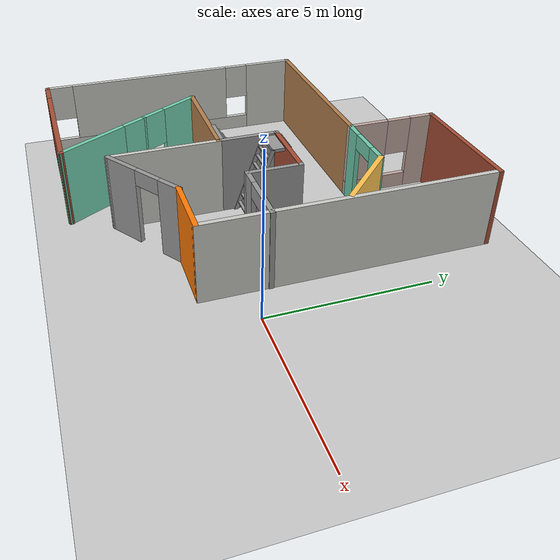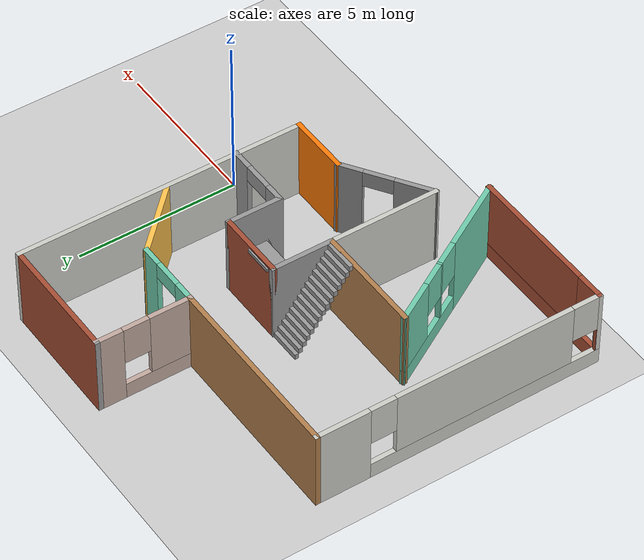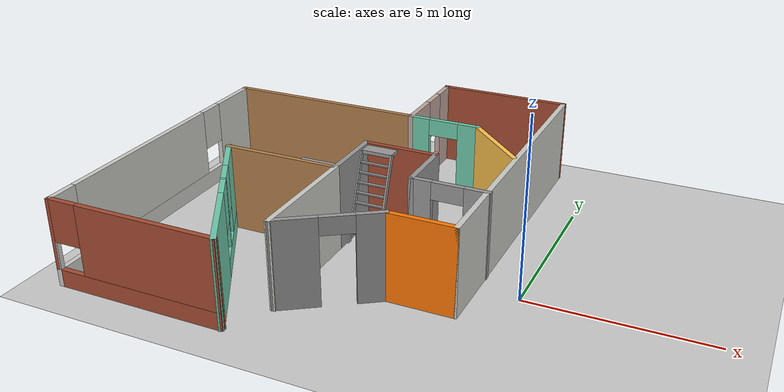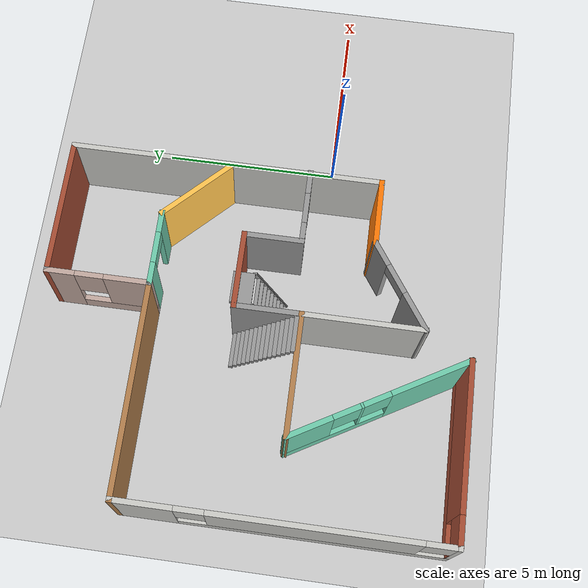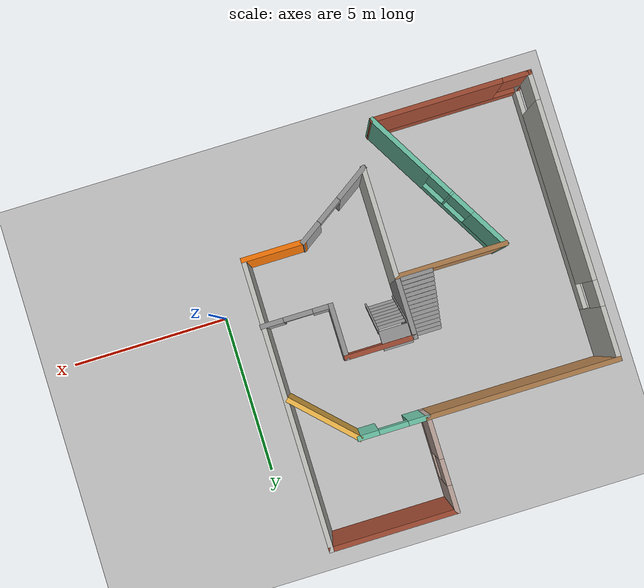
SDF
<sdf version="1.6">
 <world name="default">
  <light name="sun" type="directional">
   <pose>0 0 10 0 -0 0</pose>
   <diffuse>0.8 0.8 0.8 1</diffuse>
   <specular>0.2 0.2 0.2 1</specular>
   <attenuation>
    <range>1000</range>
    <constant>0.9</constant>
    <linear>0.01</linear>
    <quadratic>0.001</quadratic>
   </attenuation>
   <direction>-0.5 0.1 -0.9</direction>
  </light>
  <model name="ground_plane">
   <static>1</static>
   <link name="link">
    <collision name="collision">
     <geometry><plane><normal>0 0 1</normal><size>100 100</size></plane></geometry>
     <surface>
      <contact><collide_bitmask>65535</collide_bitmask></contact>
      <friction><ode><mu>100</mu><mu2>50</mu2></ode></friction>
     </surface>
    </collision>
    <visual name="visual">
     <cast_shadows>0</cast_shadows>
     <geometry><plane><normal>0 0 1</normal><size>100 100</size></plane></geometry>
     <material>
      <script><uri>file://media/materials/scripts/gazebo.material</uri><name>Gazebo/Grey</name></script>
     </material>
    </visual>
   </link>
  </model>
  <gravity>0 0 -9.8</gravity>
  <magnetic_field>6e-06 2.3e-05 -4.2e-05</magnetic_field>
  <atmosphere type="adiabatic"/>
  <physics name="default_physics" default="0" type="ode">
   <max_step_size>0.001</max_step_size>
   <real_time_factor>1</real_time_factor>
   <real_time_update_rate>1000</real_time_update_rate>
  </physics>
  <scene><ambient>0.4 0.4 0.4 1</ambient><background>0.7 0.7 0.7 1</background><shadows>1</shadows></scene>
  <spherical_coordinates>
   <surface_model>EARTH_WGS84</surface_model>
   <latitude_deg>0</latitude_deg>
   <longitude_deg>0</longitude_deg>
   <elevation>0</elevation>
   <heading_deg>0</heading_deg>
  </spherical_coordinates>
  <model name="hus">
   <pose>-6.0275 1.59627 0 0 -0 0</pose>
   <link name="Stairs_1">
    <visual name="Stairs_1_Visual_0">
     <pose>0.082546 0.630764 0.083333 0 -0 0</pose>
     <geometry><box><size>1 0.122816 0.166667</size></box></geometry>
     <material>
      <script><uri>file://media/materials/scripts/gazebo.material</uri><name>Gazebo/Grey</name></script>
      <ambient>1 1 1 1</ambient>
     </material>
     <meta><layer>0</layer></meta>
    </visual>
    <collision name="Stairs_1_Collision_0">
     <geometry><box><size>1 0.122816 0.166667</size></box></geometry>
     <pose>0.082546 0.630764 0.083333 0 -0 0</pose>
    </collision>
    <visual name="Stairs_1_Visual_1">
     <pose>0.082546 0.507948 0.25 0 -0 0</pose>
     <geometry><box><size>1 0.122816 0.166667</size></box></geometry>
     <material>
      <script><uri>file://media/materials/scripts/gazebo.material</uri><name>Gazebo/Grey</name></script>
      <ambient>1 1 1 1</ambient>
     </material>
     <meta><layer>0</layer></meta>
    </visual>
    <collision name="Stairs_1_Collision_1">
     <geometry><box><size>1 0.122816 0.166667</size></box></geometry>
     <pose>0.082546 0.507948 0.25 0 -0 0</pose>
    </collision>
    <visual name="Stairs_1_Visual_2">
     <pose>0.082546 0.385132 0.416667 0 -0 0</pose>
     <geometry><box><size>1 0.122816 0.166667</size></box></geometry>
     <material>
      <script><uri>file://media/materials/scripts/gazebo.material</uri><name>Gazebo/Grey</name></script>
      <ambient>1 1 1 1</ambient>
     </material>
     <meta><layer>0</layer></meta>
    </visual>
    <collision name="Stairs_1_Collision_2">
     <geometry><box><size>1 0.122816 0.166667</size></box></geometry>
     <pose>0.082546 0.385132 0.416667 0 -0 0</pose>
    </collision>
    <visual name="Stairs_1_Visual_3">
     <pose>0.082546 0.262315 0.583333 0 -0 0</pose>
     <geometry><box><size>1 0.122816 0.166667</size></box></geometry>
     <material>
      <script><uri>file://media/materials/scripts/gazebo.material</uri><name>Gazebo/Grey</name></script>
      <ambient>1 1 1 1</ambient>
     </material>
     <meta><layer>0</layer></meta>
    </visual>
    <collision name="Stairs_1_Collision_3">
     <geometry><box><size>1 0.122816 0.166667</size></box></geometry>
     <pose>0.082546 0.262315 0.583333 0 -0 0</pose>
    </collision>
    <visual name="Stairs_1_Visual_4">
     <pose>0.082546 0.139499 0.75 0 -0 0</pose>
     <geometry><box><size>1 0.122816 0.166667</size></box></geometry>
     <material>
      <script><uri>file://media/materials/scripts/gazebo.material</uri><name>Gazebo/Grey</name></script>
      <ambient>1 1 1 1</ambient>
     </material>
     <meta><layer>0</layer></meta>
    </visual>
    <collision name="Stairs_1_Collision_4">
     <geometry><box><size>1 0.122816 0.166667</size></box></geometry>
     <pose>0.082546 0.139499 0.75 0 -0 0</pose>
    </collision>
    <visual name="Stairs_1_Visual_5">
     <pose>0.082546 0.016682 0.916667 0 -0 0</pose>
     <geometry><box><size>1 0.122816 0.166667</size></box></geometry>
     <material>
      <script><uri>file://media/materials/scripts/gazebo.material</uri><name>Gazebo/Grey</name></script>
      <ambient>1 1 1 1</ambient>
     </material>
     <meta><layer>0</layer></meta>
    </visual>
    <collision name="Stairs_1_Collision_5">
     <geometry><box><size>1 0.122816 0.166667</size></box></geometry>
     <pose>0.082546 0.016682 0.916667 0 -0 0</pose>
    </collision>
    <visual name="Stairs_1_Visual_6">
     <pose>0.082546 -0.106134 1.08333 0 -0 0</pose>
     <geometry><box><size>1 0.122816 0.166667</size></box></geometry>
     <material>
      <script><uri>file://media/materials/scripts/gazebo.material</uri><name>Gazebo/Grey</name></script>
      <ambient>1 1 1 1</ambient>
     </material>
     <meta><layer>0</layer></meta>
    </visual>
    <collision name="Stairs_1_Collision_6">
     <geometry><box><size>1 0.122816 0.166667</size></box></geometry>
     <pose>0.082546 -0.106134 1.08333 0 -0 0</pose>
    </collision>
    <visual name="Stairs_1_Visual_7">
     <pose>0.082546 -0.228951 1.25 0 -0 0</pose>
     <geometry><box><size>1 0.122816 0.166667</size></box></geometry>
     <material>
      <script><uri>file://media/materials/scripts/gazebo.material</uri><name>Gazebo/Grey</name></script>
      <ambient>1 1 1 1</ambient>
     </material>
     <meta><layer>0</layer></meta>
    </visual>
    <collision name="Stairs_1_Collision_7">
     <geometry><box><size>1 0.122816 0.166667</size></box></geometry>
     <pose>0.082546 -0.228951 1.25 0 -0 0</pose>
    </collision>
    <visual name="Stairs_1_Visual_8">
     <pose>0.082546 -0.351767 1.41667 0 -0 0</pose>
     <geometry><box><size>1 0.122816 0.166667</size></box></geometry>
     <material>
      <script><uri>file://media/materials/scripts/gazebo.material</uri><name>Gazebo/Grey</name></script>
      <ambient>1 1 1 1</ambient>
     </material>
     <meta><layer>0</layer></meta>
    </visual>
    <collision name="Stairs_1_Collision_8">
     <geometry><box><size>1 0.122816 0.166667</size></box></geometry>
     <pose>0.082546 -0.351767 1.41667 0 -0 0</pose>
    </collision>
    <visual name="Stairs_1_Visual_9">
     <pose>0.082546 -0.474583 1.58333 0 -0 0</pose>
     <geometry><box><size>1 0.122816 0.166667</size></box></geometry>
     <material>
      <script><uri>file://media/materials/scripts/gazebo.material</uri><name>Gazebo/Grey</name></script>
      <ambient>1 1 1 1</ambient>
     </material>
     <meta><layer>0</layer></meta>
    </visual>
    <collision name="Stairs_1_Collision_9">
     <geometry><box><size>1 0.122816 0.166667</size></box></geometry>
     <pose>0.082546 -0.474583 1.58333 0 -0 0</pose>
    </collision>
    <visual name="Stairs_1_Visual_10">
     <pose>0.082546 -0.5974 1.75 0 -0 0</pose>
     <geometry><box><size>1 0.122816 0.166667</size></box></geometry>
     <material>
      <script><uri>file://media/materials/scripts/gazebo.material</uri><name>Gazebo/Grey</name></script>
      <ambient>1 1 1 1</ambient>
     </material>
     <meta><layer>0</layer></meta>
    </visual>
    <collision name="Stairs_1_Collision_10">
     <geometry><box><size>1 0.122816 0.166667</size></box></geometry>
     <pose>0.082546 -0.5974 1.75 0 -0 0</pose>
    </collision>
    <visual name="Stairs_1_Visual_11">
     <pose>0.082546 -0.720216 1.91667 0 -0 0</pose>
     <geometry><box><size>1 0.122816 0.166667</size></box></geometry>
     <material>
      <script><uri>file://media/materials/scripts/gazebo.material</uri><name>Gazebo/Grey</name></script>
      <ambient>1 1 1 1</ambient>
     </material>
     <meta><layer>0</layer></meta>
    </visual>
    <collision name="Stairs_1_Collision_11">
     <geometry><box><size>1 0.122816 0.166667</size></box></geometry>
     <pose>0.082546 -0.720216 1.91667 0 -0 0</pose>
    </collision>
    <visual name="Stairs_1_Visual_12">
     <pose>0.082546 -0.843033 2.08333 0 -0 0</pose>
     <geometry><box><size>1 0.122816 0.166667</size></box></geometry>
     <material>
      <script><uri>file://media/materials/scripts/gazebo.material</uri><name>Gazebo/Grey</name></script>
      <ambient>1 1 1 1</ambient>
     </material>
     <meta><layer>0</layer></meta>
    </visual>
    <collision name="Stairs_1_Collision_12">
     <geometry><box><size>1 0.122816 0.166667</size></box></geometry>
     <pose>0.082546 -0.843033 2.08333 0 -0 0</pose>
    </collision>
    <visual name="Stairs_1_Visual_13">
     <pose>0.082546 -0.965849 2.25 0 -0 0</pose>
     <geometry><box><size>1 0.122816 0.166667</size></box></geometry>
     <material>
      <script><uri>file://media/materials/scripts/gazebo.material</uri><name>Gazebo/Grey</name></script>
      <ambient>1 1 1 1</ambient>
     </material>
     <meta><layer>0</layer></meta>
    </visual>
    <collision name="Stairs_1_Collision_13">
     <geometry><box><size>1 0.122816 0.166667</size></box></geometry>
     <pose>0.082546 -0.965849 2.25 0 -0 0</pose>
    </collision>
    <visual name="Stairs_1_Visual_14">
     <pose>0.082546 -1.08866 2.41667 0 -0 0</pose>
     <geometry><box><size>1 0.122816 0.166667</size></box></geometry>
     <material>
      <script><uri>file://media/materials/scripts/gazebo.material</uri><name>Gazebo/Grey</name></script>
      <ambient>1 1 1 1</ambient>
     </material>
     <meta><layer>0</layer></meta>
    </visual>
    <collision name="Stairs_1_Collision_14">
     <geometry><box><size>1 0.122816 0.166667</size></box></geometry>
     <pose>0.082546 -1.08866 2.41667 0 -0 0</pose>
    </collision>
   </link>
   <link name="Wall_0">
    <collision name="Wall_0_Collision">
     <geometry><box><size>2 0.15 2.5</size></box></geometry>
     <pose>0 0 1.25 0 -0 0</pose>
    </collision>
    <visual name="Wall_0_Visual">
     <pose>0 0 1.25 0 -0 0</pose>
     <geometry><box><size>2 0.15 2.5</size></box></geometry>
     <material>
      <script><uri>file://media/materials/scripts/gazebo.material</uri><name>Gazebo/Grey</name></script>
      <ambient>0.996078 0.47451 0.0196078 1</ambient>
     </material>
     <meta><layer>0</layer></meta>
    </visual>
    <pose>3.9125 -2.98627 0 0 -0 0</pose>
   </link>
   <link name="Wall_1">
    <collision name="Wall_1_Collision">
     <geometry><box><size>9 0.15 2.5</size></box></geometry>
     <pose>0 0 1.25 0 -0 0</pose>
    </collision>
    <visual name="Wall_1_Visual">
     <pose>0 0 1.25 0 -0 0</pose>
     <geometry><box><size>9 0.15 2.5</size></box></geometry>
     <material>
      <script><uri>file://media/materials/scripts/gazebo.material</uri><name>Gazebo/CeilingTiled</name></script>
      <ambient>1 1 1 1</ambient>
     </material>
     <meta><layer>0</layer></meta>
    </visual>
    <pose>4.8375 1.43873 0 0 -0 1.5708</pose>
   </link>
   <link name="Wall_10">
    <pose>-1.35 -3.51966 0 0 -0 2.0944</pose>
    <visual name="Wall_10_Visual_0">
     <pose>-1.53491 0 1.25 0 -0 0</pose>
     <geometry><box><size>2.43019 0.15 2.5</size></box></geometry>
     <material>
      <script><uri>file://media/materials/scripts/gazebo.material</uri><name>Gazebo/Grey</name></script>
      <ambient>0.435294 0.796078 0.67451 1</ambient>
     </material>
     <meta><layer>0</layer></meta>
    </visual>
    <collision name="Wall_10_Collision_0">
     <geometry><box><size>2.43019 0.15 2.5</size></box></geometry>
     <pose>-1.53491 0 1.25 0 -0 0</pose>
    </collision>
    <visual name="Wall_10_Visual_1">
     <pose>1.21509 0 0.25 0 -0 0</pose>
     <geometry><box><size>3.06981 0.15 0.5</size></box></geometry>
     <material>
      <script><uri>file://media/materials/scripts/gazebo.material</uri><name>Gazebo/Grey</name></script>
      <ambient>0.435294 0.796078 0.67451 1</ambient>
     </material>
     <meta><layer>0</layer></meta>
    </visual>
    <collision name="Wall_10_Collision_1">
     <geometry><box><size>3.06981 0.15 0.5</size></box></geometry>
     <pose>1.21509 0 0.25 0 -0 0</pose>
    </collision>
    <visual name="Wall_10_Visual_2">
     <pose>0.516741 0 1.5 0 -0 0</pose>
     <geometry><box><size>0.073109 0.15 2</size></box></geometry>
     <material>
      <script><uri>file://media/materials/scripts/gazebo.material</uri><name>Gazebo/Grey</name></script>
      <ambient>0.435294 0.796078 0.67451 1</ambient>
     </material>
     <meta><layer>0</layer></meta>
    </visual>
    <collision name="Wall_10_Collision_2">
     <geometry><box><size>0.073109 0.15 2</size></box></geometry>
     <pose>0.516741 0 1.5 0 -0 0</pose>
    </collision>
    <visual name="Wall_10_Visual_3">
     <pose>2.05165 0 1.5 0 -0 0</pose>
     <geometry><box><size>1.3967 0.15 2</size></box></geometry>
     <material>
      <script><uri>file://media/materials/scripts/gazebo.material</uri><name>Gazebo/Grey</name></script>
      <ambient>0.435294 0.796078 0.67451 1</ambient>
     </material>
     <meta><layer>0</layer></meta>
    </visual>
    <collision name="Wall_10_Collision_3">
     <geometry><box><size>1.3967 0.15 2</size></box></geometry>
     <pose>2.05165 0 1.5 0 -0 0</pose>
    </collision>
    <visual name="Wall_10_Visual_4">
     <pose>0.080187 0 1.9 0 -0 0</pose>
     <geometry><box><size>0.8 0.15 1.2</size></box></geometry>
     <material>
      <script><uri>file://media/materials/scripts/gazebo.material</uri><name>Gazebo/Grey</name></script>
      <ambient>0.435294 0.796078 0.67451 1</ambient>
     </material>
     <meta><layer>0</layer></meta>
    </visual>
    <collision name="Wall_10_Collision_4">
     <geometry><box><size>0.8 0.15 1.2</size></box></geometry>
     <pose>0.080187 0 1.9 0 -0 0</pose>
    </collision>
    <visual name="Wall_10_Visual_5">
     <pose>0.953296 0 1.9 0 -0 0</pose>
     <geometry><box><size>0.8 0.15 1.2</size></box></geometry>
     <material>
      <script><uri>file://media/materials/scripts/gazebo.material</uri><name>Gazebo/Grey</name></script>
      <ambient>0.435294 0.796078 0.67451 1</ambient>
     </material>
     <meta><layer>0</layer></meta>
    </visual>
    <collision name="Wall_10_Collision_5">
     <geometry><box><size>0.8 0.15 1.2</size></box></geometry>
     <pose>0.953296 0 1.9 0 -0 0</pose>
    </collision>
   </link>
   <link name="Wall_14">
    <collision name="Wall_14_Collision">
     <geometry><box><size>3.5 0.15 2.5</size></box></geometry>
     <pose>0 0 1.25 0 -0 0</pose>
    </collision>
    <visual name="Wall_14_Visual">
     <pose>0 0 1.25 0 -0 0</pose>
     <geometry><box><size>3.5 0.15 2.5</size></box></geometry>
     <material>
      <script><uri>file://media/materials/scripts/gazebo.material</uri><name>Gazebo/Wood</name></script>
      <ambient>1 1 1 1</ambient>
     </material>
     <meta><layer>0</layer></meta>
    </visual>
    <pose>-1.0125 -1.20304 0 0 -0 0</pose>
   </link>
   <link name="Wall_15">
    <collision name="Wall_15_Collision">
     <geometry><box><size>3.5 0.15 2.5</size></box></geometry>
     <pose>0 0 1.25 0 -0 0</pose>
    </collision>
    <visual name="Wall_15_Visual">
     <pose>0 0 1.25 0 -0 0</pose>
     <geometry><box><size>3.5 0.15 2.5</size></box></geometry>
     <material>
      <script><uri>file://media/materials/scripts/gazebo.material</uri><name>Gazebo/CeilingTiled</name></script>
      <ambient>1 1 1 1</ambient>
     </material>
     <meta><layer>0</layer></meta>
    </visual>
    <pose>0.662501 -2.87804 0 0 0 -1.5708</pose>
   </link>
   <link name="Wall_16">
    <pose>1.825 -3.76966 0 0 -0 0.592978</pose>
    <visual name="Wall_16_Visual_0">
     <pose>-0.854731 0 1.25 0 -0 0</pose>
     <geometry><box><size>1.24417 0.15 2.5</size></box></geometry>
     <material>
      <script><uri>file://media/materials/scripts/gazebo.material</uri><name>Gazebo/Grey</name></script>
      <ambient>1 1 1 1</ambient>
     </material>
     <meta><layer>0</layer></meta>
    </visual>
    <collision name="Wall_16_Collision_0">
     <geometry><box><size>1.24417 0.15 2.5</size></box></geometry>
     <pose>-0.854731 0 1.25 0 -0 0</pose>
    </collision>
    <visual name="Wall_16_Visual_1">
     <pose>1.07209 0 1.25 0 -0 0</pose>
     <geometry><box><size>0.809462 0.15 2.5</size></box></geometry>
     <material>
      <script><uri>file://media/materials/scripts/gazebo.material</uri><name>Gazebo/Grey</name></script>
      <ambient>1 1 1 1</ambient>
     </material>
     <meta><layer>0</layer></meta>
    </visual>
    <collision name="Wall_16_Collision_1">
     <geometry><box><size>0.809462 0.15 2.5</size></box></geometry>
     <pose>1.07209 0 1.25 0 -0 0</pose>
    </collision>
    <visual name="Wall_16_Visual_2">
     <pose>0.217356 0 2.25 0 -0 0</pose>
     <geometry><box><size>0.9 0.15 0.5</size></box></geometry>
     <material>
      <script><uri>file://media/materials/scripts/gazebo.material</uri><name>Gazebo/Grey</name></script>
      <ambient>1 1 1 1</ambient>
     </material>
     <meta><layer>0</layer></meta>
    </visual>
    <collision name="Wall_16_Collision_2">
     <geometry><box><size>0.9 0.15 0.5</size></box></geometry>
     <pose>0.217356 0 2.25 0 -0 0</pose>
    </collision>
   </link>
   <link name="Wall_18">
    <collision name="Wall_18_Collision">
     <geometry><box><size>2 0.15 2.5</size></box></geometry>
     <pose>0 0 1.25 0 -0 0</pose>
    </collision>
    <visual name="Wall_18_Visual">
     <pose>0 0 1.25 0 -0 0</pose>
     <geometry><box><size>2 0.15 2.5</size></box></geometry>
     <material>
      <script><uri>file://media/materials/scripts/gazebo.material</uri><name>Gazebo/Grey</name></script>
      <ambient>1 1 1 1</ambient>
     </material>
     <meta><layer>0</layer></meta>
    </visual>
    <pose>0.662501 -0.278039 0 0 -0 1.5708</pose>
   </link>
   <link name="Wall_19">
    <collision name="Wall_19_Collision">
     <geometry><box><size>0.15 0.15 2.5</size></box></geometry>
     <pose>0 0 1.25 0 -0 0</pose>
    </collision>
    <visual name="Wall_19_Visual">
     <pose>0 0 1.25 0 -0 0</pose>
     <geometry><box><size>0.15 0.15 2.5</size></box></geometry>
     <material>
      <script><uri>file://media/materials/scripts/gazebo.material</uri><name>Gazebo/Grey</name></script>
      <ambient>1 1 1 1</ambient>
     </material>
     <meta><layer>0</layer></meta>
    </visual>
    <pose>0.662501 0.646961 0 0 -0 0</pose>
   </link>
   <link name="Wall_20">
    <collision name="Wall_20_Collision">
     <geometry><box><size>2.25 0.15 2.5</size></box></geometry>
     <pose>0 0 1.25 0 -0 0</pose>
    </collision>
    <visual name="Wall_20_Visual">
     <pose>0 0 1.25 0 -0 0</pose>
     <geometry><box><size>2.25 0.15 2.5</size></box></geometry>
     <material>
      <script><uri>file://media/materials/scripts/gazebo.material</uri><name>Gazebo/Bricks</name></script>
      <ambient>0.435294 0.796078 0.67451 1</ambient>
     </material>
     <meta><layer>0</layer></meta>
    </visual>
    <pose>1.7125 0.646961 0 0 -0 0</pose>
   </link>
   <link name="Wall_21">
    <collision name="Wall_21_Collision">
     <geometry><box><size>1.75 0.15 2.5</size></box></geometry>
     <pose>0 0 1.25 0 -0 0</pose>
    </collision>
    <visual name="Wall_21_Visual">
     <pose>0 0 1.25 0 -0 0</pose>
     <geometry><box><size>1.75 0.15 2.5</size></box></geometry>
     <material>
      <script><uri>file://media/materials/scripts/gazebo.material</uri><name>Gazebo/Grey</name></script>
      <ambient>1 1 1 1</ambient>
     </material>
     <meta><layer>0</layer></meta>
    </visual>
    <pose>2.7625 -0.153039 0 0 0 -1.5708</pose>
   </link>
   <link name="Wall_22">
    <pose>3.8125 -0.953038 0 0 -0 0</pose>
    <visual name="Wall_22_Visual_0">
     <pose>-0.807127 0 1.25 0 -0 0</pose>
     <geometry><box><size>0.635747 0.15 2.5</size></box></geometry>
     <material>
      <script><uri>file://media/materials/scripts/gazebo.material</uri><name>Gazebo/Grey</name></script>
      <ambient>1 1 1 1</ambient>
     </material>
     <meta><layer>0</layer></meta>
    </visual>
    <collision name="Wall_22_Collision_0">
     <geometry><box><size>0.635747 0.15 2.5</size></box></geometry>
     <pose>-0.807127 0 1.25 0 -0 0</pose>
    </collision>
    <visual name="Wall_22_Visual_1">
     <pose>0.767873 0 1.25 0 -0 0</pose>
     <geometry><box><size>0.714253 0.15 2.5</size></box></geometry>
     <material>
      <script><uri>file://media/materials/scripts/gazebo.material</uri><name>Gazebo/Grey</name></script>
      <ambient>1 1 1 1</ambient>
     </material>
     <meta><layer>0</layer></meta>
    </visual>
    <collision name="Wall_22_Collision_1">
     <geometry><box><size>0.714253 0.15 2.5</size></box></geometry>
     <pose>0.767873 0 1.25 0 -0 0</pose>
    </collision>
    <visual name="Wall_22_Visual_2">
     <pose>-0.039253 0 2.25 0 -0 0</pose>
     <geometry><box><size>0.9 0.15 0.5</size></box></geometry>
     <material>
      <script><uri>file://media/materials/scripts/gazebo.material</uri><name>Gazebo/Grey</name></script>
      <ambient>1 1 1 1</ambient>
     </material>
     <meta><layer>0</layer></meta>
    </visual>
    <collision name="Wall_22_Collision_2">
     <geometry><box><size>0.9 0.15 0.5</size></box></geometry>
     <pose>-0.039253 0 2.25 0 -0 0</pose>
    </collision>
   </link>
   <link name="Wall_25">
    <pose>2.0375 3.01373 0 0 -0 0</pose>
    <visual name="Wall_25_Visual_0">
     <pose>-0.784839 0 1.25 0 -0 0</pose>
     <geometry><box><size>0.680322 0.15 2.5</size></box></geometry>
     <material>
      <script><uri>file://media/materials/scripts/gazebo.material</uri><name>Gazebo/Grey</name></script>
      <ambient>0.435294 0.796078 0.67451 1</ambient>
     </material>
     <meta><layer>0</layer></meta>
    </visual>
    <collision name="Wall_25_Collision_0">
     <geometry><box><size>0.680322 0.15 2.5</size></box></geometry>
     <pose>-0.784839 0 1.25 0 -0 0</pose>
    </collision>
    <visual name="Wall_25_Visual_1">
     <pose>0.790161 0 1.25 0 -0 0</pose>
     <geometry><box><size>0.669678 0.15 2.5</size></box></geometry>
     <material>
      <script><uri>file://media/materials/scripts/gazebo.material</uri><name>Gazebo/Grey</name></script>
      <ambient>0.435294 0.796078 0.67451 1</ambient>
     </material>
     <meta><layer>0</layer></meta>
    </visual>
    <collision name="Wall_25_Collision_1">
     <geometry><box><size>0.669678 0.15 2.5</size></box></geometry>
     <pose>0.790161 0 1.25 0 -0 0</pose>
    </collision>
    <visual name="Wall_25_Visual_2">
     <pose>0.005322 0 2.25 0 -0 0</pose>
     <geometry><box><size>0.9 0.15 0.5</size></box></geometry>
     <material>
      <script><uri>file://media/materials/scripts/gazebo.material</uri><name>Gazebo/Grey</name></script>
      <ambient>0.435294 0.796078 0.67451 1</ambient>
     </material>
     <meta><layer>0</layer></meta>
    </visual>
    <collision name="Wall_25_Collision_2">
     <geometry><box><size>0.9 0.15 0.5</size></box></geometry>
     <pose>0.005322 0 2.25 0 -0 0</pose>
    </collision>
   </link>
   <link name="Wall_26">
    <collision name="Wall_26_Collision">
     <geometry><box><size>2.5 0.15 2.5</size></box></geometry>
     <pose>0 0 1.25 0 -0 0</pose>
    </collision>
    <visual name="Wall_26_Visual">
     <pose>0 0 1.25 0 -0 0</pose>
     <geometry><box><size>2.5 0.15 2.5</size></box></geometry>
     <material>
      <script><uri>file://media/materials/scripts/gazebo.material</uri><name>Gazebo/Grey</name></script>
      <ambient>1 0.764706 0.305882 1</ambient>
     </material>
     <meta><layer>0</layer></meta>
    </visual>
    <pose>3.91835 2.18288 0 0 0 -0.785398</pose>
   </link>
   <link name="Wall_3">
    <collision name="Wall_3_Collision">
     <geometry><box><size>4 0.15 2.5</size></box></geometry>
     <pose>0 0 1.25 0 -0 0</pose>
    </collision>
    <visual name="Wall_3_Visual">
     <pose>0 0 1.25 0 -0 0</pose>
     <geometry><box><size>4 0.15 2.5</size></box></geometry>
     <material>
      <script><uri>file://media/materials/scripts/gazebo.material</uri><name>Gazebo/Bricks</name></script>
      <ambient>1 1 1 1</ambient>
     </material>
     <meta><layer>0</layer></meta>
    </visual>
    <pose>2.9125 5.86373 0 0 -0 3.14159</pose>
   </link>
   <link name="Wall_4">
    <collision name="Wall_4_Collision">
     <geometry><box><size>0.15 0.15 2.5</size></box></geometry>
     <pose>0 0 1.25 0 -0 0</pose>
    </collision>
    <visual name="Wall_4_Visual">
     <pose>0 0 1.25 0 -0 0</pose>
     <geometry><box><size>0.15 0.15 2.5</size></box></geometry>
     <material>
      <script><uri>file://media/materials/scripts/gazebo.material</uri><name>Gazebo/Grey</name></script>
      <ambient>1 1 1 1</ambient>
     </material>
     <meta><layer>0</layer></meta>
    </visual>
    <pose>0.987501 5.86373 0 0 -0 0</pose>
   </link>
   <link name="Wall_5">
    <pose>0.987501 4.43872 0 0 0 -1.5708</pose>
    <visual name="Wall_5_Visual_0">
     <pose>-1.07257 0 1.25 0 -0 0</pose>
     <geometry><box><size>0.85486 0.15 2.5</size></box></geometry>
     <material>
      <script><uri>file://media/materials/scripts/gazebo.material</uri><name>Gazebo/Grey</name></script>
      <ambient>0.760784 0.662745 0.627451 1</ambient>
     </material>
     <meta><layer>0</layer></meta>
    </visual>
    <collision name="Wall_5_Collision_0">
     <geometry><box><size>0.85486 0.15 2.5</size></box></geometry>
     <pose>-1.07257 0 1.25 0 -0 0</pose>
    </collision>
    <visual name="Wall_5_Visual_1">
     <pose>0.42743 0 0.25 0 -0 0</pose>
     <geometry><box><size>2.14514 0.15 0.5</size></box></geometry>
     <material>
      <script><uri>file://media/materials/scripts/gazebo.material</uri><name>Gazebo/Grey</name></script>
      <ambient>0.760784 0.662745 0.627451 1</ambient>
     </material>
     <meta><layer>0</layer></meta>
    </visual>
    <collision name="Wall_5_Collision_1">
     <geometry><box><size>2.14514 0.15 0.5</size></box></geometry>
     <pose>0.42743 0 0.25 0 -0 0</pose>
    </collision>
    <visual name="Wall_5_Visual_2">
     <pose>0.82743 0 1.5 0 -0 0</pose>
     <geometry><box><size>1.34514 0.15 2</size></box></geometry>
     <material>
      <script><uri>file://media/materials/scripts/gazebo.material</uri><name>Gazebo/Grey</name></script>
      <ambient>0.760784 0.662745 0.627451 1</ambient>
     </material>
     <meta><layer>0</layer></meta>
    </visual>
    <collision name="Wall_5_Collision_2">
     <geometry><box><size>1.34514 0.15 2</size></box></geometry>
     <pose>0.82743 0 1.5 0 -0 0</pose>
    </collision>
    <visual name="Wall_5_Visual_3">
     <pose>-0.24514 0 1.9 0 -0 0</pose>
     <geometry><box><size>0.8 0.15 1.2</size></box></geometry>
     <material>
      <script><uri>file://media/materials/scripts/gazebo.material</uri><name>Gazebo/Grey</name></script>
      <ambient>0.760784 0.662745 0.627451 1</ambient>
     </material>
     <meta><layer>0</layer></meta>
    </visual>
    <collision name="Wall_5_Collision_3">
     <geometry><box><size>0.8 0.15 1.2</size></box></geometry>
     <pose>-0.24514 0 1.9 0 -0 0</pose>
    </collision>
   </link>
   <link name="Wall_6">
    <collision name="Wall_6_Collision">
     <geometry><box><size>0.15 0.15 2.5</size></box></geometry>
     <pose>0 0 1.25 0 -0 0</pose>
    </collision>
    <visual name="Wall_6_Visual">
     <pose>0 0 1.25 0 -0 0</pose>
     <geometry><box><size>0.15 0.15 2.5</size></box></geometry>
     <material>
      <script><uri>file://media/materials/scripts/gazebo.material</uri><name>Gazebo/Grey</name></script>
      <ambient>1 1 1 1</ambient>
     </material>
     <meta><layer>0</layer></meta>
    </visual>
    <pose>0.987501 3.01373 0 0 -0 0</pose>
   </link>
   <link name="Wall_7">
    <collision name="Wall_7_Collision">
     <geometry><box><size>6 0.15 2.5</size></box></geometry>
     <pose>0 0 1.25 0 -0 0</pose>
    </collision>
    <visual name="Wall_7_Visual">
     <pose>0 0 1.25 0 -0 0</pose>
     <geometry><box><size>6 0.15 2.5</size></box></geometry>
     <material>
      <script><uri>file://media/materials/scripts/gazebo.material</uri><name>Gazebo/Wood</name></script>
      <ambient>1 1 1 1</ambient>
     </material>
     <meta><layer>0</layer></meta>
    </visual>
    <pose>-1.9375 3.01373 0 0 -0 3.14159</pose>
   </link>
   <link name="Wall_8">
    <pose>-4.8625 -1.41127 0 0 0 -1.5708</pose>
    <visual name="Wall_8_Visual_0">
     <pose>-3.65295 0 1.25 0 -0 0</pose>
     <geometry><box><size>1.6941 0.15 2.5</size></box></geometry>
     <material>
      <script><uri>file://media/materials/scripts/gazebo.material</uri><name>Gazebo/CeilingTiled</name></script>
      <ambient>1 1 1 1</ambient>
     </material>
     <meta><layer>0</layer></meta>
    </visual>
    <collision name="Wall_8_Collision_0">
     <geometry><box><size>1.6941 0.15 2.5</size></box></geometry>
     <pose>-3.65295 0 1.25 0 -0 0</pose>
    </collision>
    <visual name="Wall_8_Visual_1">
     <pose>0.847052 0 0.25 0 -0 0</pose>
     <geometry><box><size>7.3059 0.15 0.5</size></box></geometry>
     <material>
      <script><uri>file://media/materials/scripts/gazebo.material</uri><name>Gazebo/CeilingTiled</name></script>
      <ambient>1 1 1 1</ambient>
     </material>
     <meta><layer>0</layer></meta>
    </visual>
    <collision name="Wall_8_Collision_1">
     <geometry><box><size>7.3059 0.15 0.5</size></box></geometry>
     <pose>0.847052 0 0.25 0 -0 0</pose>
    </collision>
    <visual name="Wall_8_Visual_2">
     <pose>0.782105 0 1.5 0 -0 0</pose>
     <geometry><box><size>5.576 0.15 2</size></box></geometry>
     <material>
      <script><uri>file://media/materials/scripts/gazebo.material</uri><name>Gazebo/CeilingTiled</name></script>
      <ambient>1 1 1 1</ambient>
     </material>
     <meta><layer>0</layer></meta>
    </visual>
    <collision name="Wall_8_Collision_2">
     <geometry><box><size>5.576 0.15 2</size></box></geometry>
     <pose>0.782105 0 1.5 0 -0 0</pose>
    </collision>
    <visual name="Wall_8_Visual_3">
     <pose>4.43505 0 1.5 0 -0 0</pose>
     <geometry><box><size>0.129894 0.15 2</size></box></geometry>
     <material>
      <script><uri>file://media/materials/scripts/gazebo.material</uri><name>Gazebo/CeilingTiled</name></script>
      <ambient>1 1 1 1</ambient>
     </material>
     <meta><layer>0</layer></meta>
    </visual>
    <collision name="Wall_8_Collision_3">
     <geometry><box><size>0.129894 0.15 2</size></box></geometry>
     <pose>4.43505 0 1.5 0 -0 0</pose>
    </collision>
    <visual name="Wall_8_Visual_4">
     <pose>-2.4059 0 1.9 0 -0 0</pose>
     <geometry><box><size>0.8 0.15 1.2</size></box></geometry>
     <material>
      <script><uri>file://media/materials/scripts/gazebo.material</uri><name>Gazebo/CeilingTiled</name></script>
      <ambient>1 1 1 1</ambient>
     </material>
     <meta><layer>0</layer></meta>
    </visual>
    <collision name="Wall_8_Collision_4">
     <geometry><box><size>0.8 0.15 1.2</size></box></geometry>
     <pose>-2.4059 0 1.9 0 -0 0</pose>
    </collision>
    <visual name="Wall_8_Visual_5">
     <pose>3.97011 0 1.9 0 -0 0</pose>
     <geometry><box><size>0.8 0.15 1.2</size></box></geometry>
     <material>
      <script><uri>file://media/materials/scripts/gazebo.material</uri><name>Gazebo/CeilingTiled</name></script>
      <ambient>1 1 1 1</ambient>
     </material>
     <meta><layer>0</layer></meta>
    </visual>
    <collision name="Wall_8_Collision_5">
     <geometry><box><size>0.8 0.15 1.2</size></box></geometry>
     <pose>3.97011 0 1.9 0 -0 0</pose>
    </collision>
   </link>
   <link name="Wall_9">
    <pose>-2.4375 -5.83627 0 0 -0 0</pose>
    <visual name="Wall_9_Visual_0">
     <pose>-2.4478 0 1.25 0 -0 0</pose>
     <geometry><box><size>0.10441 0.15 2.5</size></box></geometry>
     <material>
      <script><uri>file://media/materials/scripts/gazebo.material</uri><name>Gazebo/Bricks</name></script>
      <ambient>0.760784 0.662745 0.627451 1</ambient>
     </material>
     <meta><layer>0</layer></meta>
    </visual>
    <collision name="Wall_9_Collision_0">
     <geometry><box><size>0.10441 0.15 2.5</size></box></geometry>
     <pose>-2.4478 0 1.25 0 -0 0</pose>
    </collision>
    <visual name="Wall_9_Visual_1">
     <pose>0.052205 0 0.25 0 -0 0</pose>
     <geometry><box><size>4.89559 0.15 0.5</size></box></geometry>
     <material>
      <script><uri>file://media/materials/scripts/gazebo.material</uri><name>Gazebo/Bricks</name></script>
      <ambient>0.760784 0.662745 0.627451 1</ambient>
     </material>
     <meta><layer>0</layer></meta>
    </visual>
    <collision name="Wall_9_Collision_1">
     <geometry><box><size>4.89559 0.15 0.5</size></box></geometry>
     <pose>0.052205 0 0.25 0 -0 0</pose>
    </collision>
    <visual name="Wall_9_Visual_2">
     <pose>0.452205 0 1.5 0 -0 0</pose>
     <geometry><box><size>4.09559 0.15 2</size></box></geometry>
     <material>
      <script><uri>file://media/materials/scripts/gazebo.material</uri><name>Gazebo/Bricks</name></script>
      <ambient>0.760784 0.662745 0.627451 1</ambient>
     </material>
     <meta><layer>0</layer></meta>
    </visual>
    <collision name="Wall_9_Collision_2">
     <geometry><box><size>4.09559 0.15 2</size></box></geometry>
     <pose>0.452205 0 1.5 0 -0 0</pose>
    </collision>
    <visual name="Wall_9_Visual_3">
     <pose>-1.99559 0 1.9 0 -0 0</pose>
     <geometry><box><size>0.8 0.15 1.2</size></box></geometry>
     <material>
      <script><uri>file://media/materials/scripts/gazebo.material</uri><name>Gazebo/Bricks</name></script>
      <ambient>0.760784 0.662745 0.627451 1</ambient>
     </material>
     <meta><layer>0</layer></meta>
    </visual>
    <collision name="Wall_9_Collision_3">
     <geometry><box><size>0.8 0.15 1.2</size></box></geometry>
     <pose>-1.99559 0 1.9 0 -0 0</pose>
    </collision>
   </link>
   <static>1</static>
  </model>
  <model name="ladder_70deg_0rails">
   <static>1</static>
   <link name="step0">
    <pose>0 0.097059 0.266667 0 -0 0</pose>
    <inertial>
     <mass>9.75482</mass>
     <inertia>
      <ixx>0.00957124</ixx>
      <iyy>0.65963</iyy>
      <izz>0.666842</izz>
      <ixy>0</ixy>
      <ixz>0</ixz>
      <iyz>0</iyz>
     </inertia>
    </inertial>
    <collision name="collision"><geometry><box><size>0.9 0.1016 0.0381</size></box></geometry></collision>
    <visual name="visual">
     <geometry><box><size>0.9 0.1016 0.0381</size></box></geometry>
     <material>
      <script><uri>file://media/materials/scripts/gazebo.material</uri><name>Gazebo/Grey</name></script>
     </material>
    </visual>
   </link>
   <link name="step1">
    <pose>0 0.194117 0.533333 0 -0 0</pose>
    <inertial>
     <mass>9.75482</mass>
     <inertia>
      <ixx>0.00957124</ixx>
      <iyy>0.65963</iyy>
      <izz>0.666842</izz>
      <ixy>0</ixy>
      <ixz>0</ixz>
      <iyz>0</iyz>
     </inertia>
    </inertial>
    <collision name="collision"><geometry><box><size>0.9 0.1016 0.0381</size></box></geometry></collision>
    <visual name="visual">
     <geometry><box><size>0.9 0.1016 0.0381</size></box></geometry>
     <material>
      <script><uri>file://media/materials/scripts/gazebo.material</uri><name>Gazebo/Grey</name></script>
     </material>
    </visual>
   </link>
   <link name="step2">
    <pose>0 0.291176 0.8 0 -0 0</pose>
    <inertial>
     <mass>9.75482</mass>
     <inertia>
      <ixx>0.00957124</ixx>
      <iyy>0.65963</iyy>
      <izz>0.666842</izz>
      <ixy>0</ixy>
      <ixz>0</ixz>
      <iyz>0</iyz>
     </inertia>
    </inertial>
    <collision name="collision"><geometry><box><size>0.9 0.1016 0.0381</size></box></geometry></collision>
    <visual name="visual">
     <geometry><box><size>0.9 0.1016 0.0381</size></box></geometry>
     <material>
      <script><uri>file://media/materials/scripts/gazebo.material</uri><name>Gazebo/Grey</name></script>
     </material>
    </visual>
   </link>
   <link name="step3">
    <pose>0 0.388235 1.06667 0 -0 0</pose>
    <inertial>
     <mass>9.75482</mass>
     <inertia>
      <ixx>0.00957124</ixx>
      <iyy>0.65963</iyy>
      <izz>0.666842</izz>
      <ixy>0</ixy>
      <ixz>0</ixz>
      <iyz>0</iyz>
     </inertia>
    </inertial>
    <collision name="collision"><geometry><box><size>0.9 0.1016 0.0381</size></box></geometry></collision>
    <visual name="visual">
     <geometry><box><size>0.9 0.1016 0.0381</size></box></geometry>
     <material>
      <script><uri>file://media/materials/scripts/gazebo.material</uri><name>Gazebo/Grey</name></script>
     </material>
    </visual>
   </link>
   <link name="step4">
    <pose>0 0.485294 1.33333 0 -0 0</pose>
    <inertial>
     <mass>9.75482</mass>
     <inertia>
      <ixx>0.00957124</ixx>
      <iyy>0.65963</iyy>
      <izz>0.666842</izz>
      <ixy>0</ixy>
      <ixz>0</ixz>
      <iyz>0</iyz>
     </inertia>
    </inertial>
    <collision name="collision"><geometry><box><size>0.9 0.1016 0.0381</size></box></geometry></collision>
    <visual name="visual">
     <geometry><box><size>0.9 0.1016 0.0381</size></box></geometry>
     <material>
      <script><uri>file://media/materials/scripts/gazebo.material</uri><name>Gazebo/Grey</name></script>
     </material>
    </visual>
   </link>
   <link name="step5">
    <pose>0 0.582352 1.6 0 -0 0</pose>
    <inertial>
     <mass>9.75482</mass>
     <inertia>
      <ixx>0.00957124</ixx>
      <iyy>0.65963</iyy>
      <izz>0.666842</izz>
      <ixy>0</ixy>
      <ixz>0</ixz>
      <iyz>0</iyz>
     </inertia>
    </inertial>
    <collision name="collision"><geometry><box><size>0.9 0.1016 0.0381</size></box></geometry></collision>
    <visual name="visual">
     <geometry><box><size>0.9 0.1016 0.0381</size></box></geometry>
     <material>
      <script><uri>file://media/materials/scripts/gazebo.material</uri><name>Gazebo/Grey</name></script>
     </material>
    </visual>
   </link>
   <link name="step6">
    <pose>0 0.679411 1.86667 0 -0 0</pose>
    <inertial>
     <mass>9.75482</mass>
     <inertia>
      <ixx>0.00957124</ixx>
      <iyy>0.65963</iyy>
      <izz>0.666842</izz>
      <ixy>0</ixy>
      <ixz>0</ixz>
      <iyz>0</iyz>
     </inertia>
    </inertial>
    <collision name="collision"><geometry><box><size>0.9 0.1016 0.0381</size></box></geometry></collision>
    <visual name="visual">
     <geometry><box><size>0.9 0.1016 0.0381</size></box></geometry>
     <material>
      <script><uri>file://media/materials/scripts/gazebo.material</uri><name>Gazebo/Grey</name></script>
     </material>
    </visual>
   </link>
   <link name="step7">
    <pose>0 0.77647 2.13333 0 -0 0</pose>
    <inertial>
     <mass>9.75482</mass>
     <inertia>
      <ixx>0.00957124</ixx>
      <iyy>0.65963</iyy>
      <izz>0.666842</izz>
      <ixy>0</ixy>
      <ixz>0</ixz>
      <iyz>0</iyz>
     </inertia>
    </inertial>
    <collision name="collision"><geometry><box><size>0.9 0.1016 0.0381</size></box></geometry></collision>
    <visual name="visual">
     <geometry><box><size>0.9 0.1016 0.0381</size></box></geometry>
     <material>
      <script><uri>file://media/materials/scripts/gazebo.material</uri><name>Gazebo/Grey</name></script>
     </material>
    </visual>
   </link>
   <link name="landing">
    <pose>0 1.17353 2.4 0 -0 0</pose>
    <inertial>
     <mass>57.6072</mass>
     <inertia><ixx>1.73518</ixx><iyy>3.89545</iyy><izz>5.6167</izz><ixy>0</ixy><ixz>0</ixz><iyz>0</iyz></inertia>
    </inertial>
    <collision name="collision"><geometry><box><size>0.9 0.6 0.1016</size></box></geometry></collision>
    <visual name="visual">
     <geometry><box><size>0.9 0.6 0.1016</size></box></geometry>
     <material>
      <script><uri>file://media/materials/scripts/gazebo.material</uri><name>Gazebo/Grey</name></script>
     </material>
    </visual>
   </link>
   <link name="left_side_wall">
    <pose>-0.45 0.436764 1.2 1.22173 -0 0</pose>
    <collision name="collision"><geometry><box><size>0.0508 2.63403 0.13</size></box></geometry></collision>
    <visual name="visual">
     <geometry><box><size>0.0508 2.63403 0.13</size></box></geometry>
     <material>
      <script><uri>file://media/materials/scripts/gazebo.material</uri><name>Gazebo/Grey</name></script>
     </material>
    </visual>
   </link>
   <link name="right_side_wall">
    <pose>0.45 0.436764 1.2 1.22173 -0 0</pose>
    <collision name="collision"><geometry><box><size>0.0508 2.63403 0.13</size></box></geometry></collision>
    <visual name="visual">
     <geometry><box><size>0.0508 2.63403 0.13</size></box></geometry>
     <material>
      <script><uri>file://media/materials/scripts/gazebo.material</uri><name>Gazebo/Grey</name></script>
     </material>
    </visual>
   </link>
   <pose>-4.82551 0.904821 0 0 -0 0</pose>
  </model>
 </world>
</sdf>
